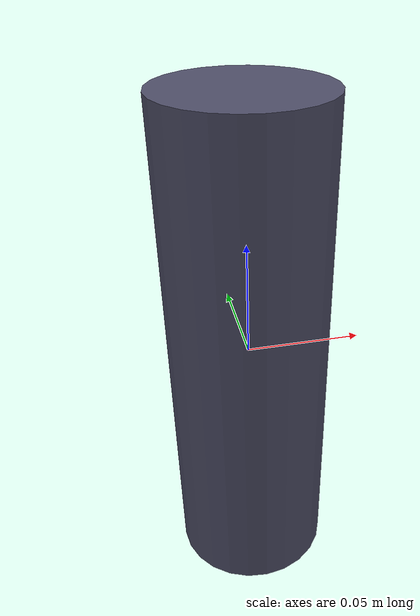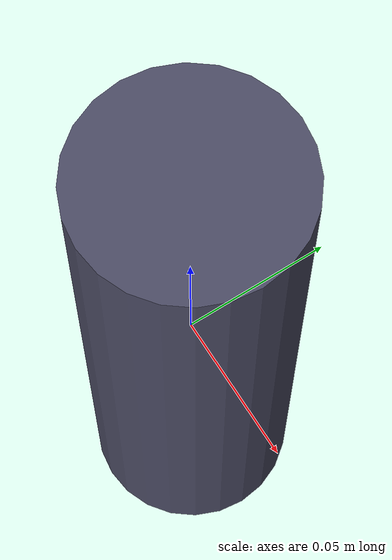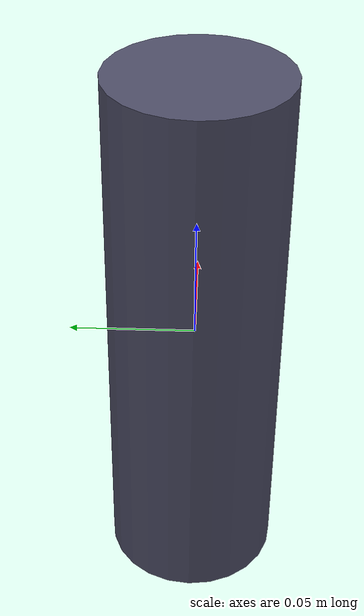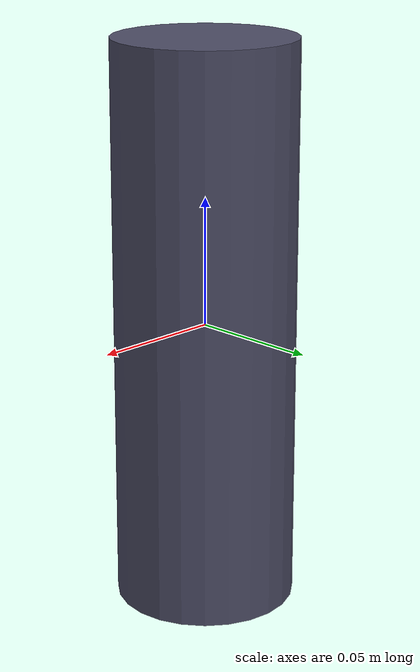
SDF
<?xml version="1.0" ?>
<sdf version="1.7">
  <model name="water_bottle">
    <static>false</static>
    <allow_auto_disable>false</allow_auto_disable>
    <self_collide>false</self_collide>

    <link name="bottle_link">
      <!-- İnertial: m=0.35 kg, r=0.035 m, h=0.22 m -->
      <inertial>
        <mass>0.05</mass>
        <inertia>
          <!-- ixx=iyy = m(3r^2 + h^2)/12 ≈ 0.001518854 -->
          <ixx>0.001518854</ixx>
          <ixy>0.0</ixy>
          <ixz>0.0</ixz>
          <iyy>0.001518854</iyy>
          <!-- izz = 0.5*m*r^2 ≈ 0.000214375 -->
          <iyz>0.0</iyz>
          <izz>0.000214375</izz>
        </inertia>
      </inertial>

      <visual name="bottle_visual">
        <geometry>
          <cylinder>
            <radius>0.035</radius>
            <length>0.22</length>
          </cylinder>
        </geometry>
        <material>
          <ambient>0.2 0.2 0.25 1</ambient>
          <diffuse>0.3 0.3 0.4 1</diffuse>
          <specular>0.1 0.1 0.1 1</specular>
        </material>
      </visual>

      <collision name="bottle_collision">
        <geometry>
          <cylinder>
            <radius>0.035</radius>
            <length>0.22</length>
          </cylinder>
        </geometry>
        <surface>
          <contact>
            <ode>
              <kp>3000000</kp>
              <kd>300</kd>
              <max_vel>0.3</max_vel>
              <min_depth>0.03</min_depth>
            </ode>
          </contact>
          <friction>
            <ode>
              <!-- Çok yüksek sürtünme - gripper ile mükemmel tutuş -->
              <mu>50.0</mu>
              <mu2>50.0</mu2>
              <slip1>0.0</slip1>
              <slip2>0.0</slip2>
            </ode>
          </friction>
        </surface>
        <!-- Narrow contact filtering to reduce jitter when attached -->
        <laser_retro>0.0</laser_retro>
        <max_contacts>200</max_contacts>
        <bitmask>0x01</bitmask>
      </collision>
    </link>
  </model>
</sdf>
